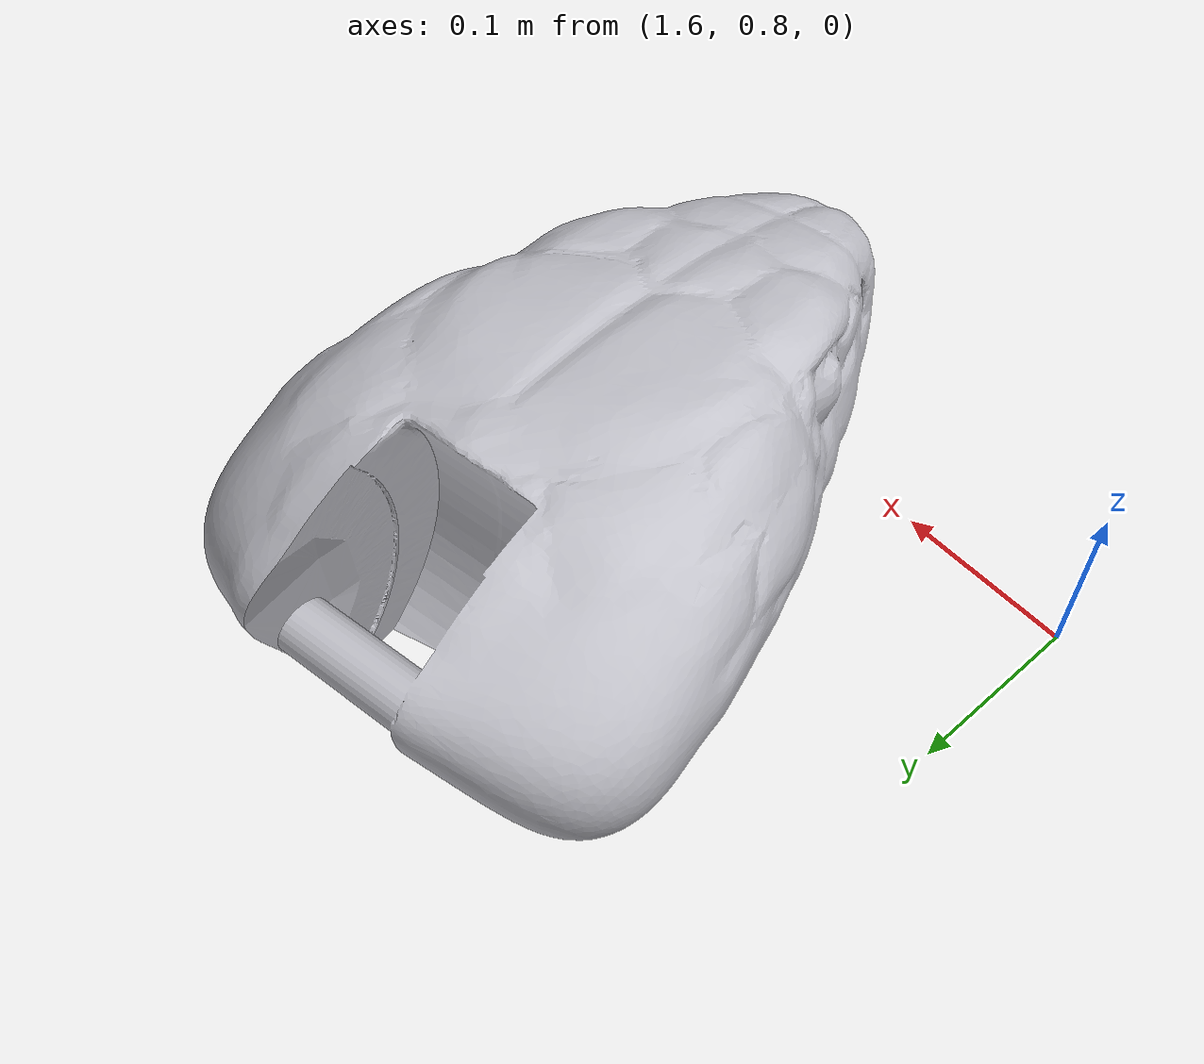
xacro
<?xml version="1.0" ?>
<robot name="snake" xmlns:xacro="http://www.ros.org/wiki/xacro">

<xacro:include filename="$(find snake_description)/urdf/materials.xacro" />
<xacro:include filename="$(find snake_description)/urdf/snake.trans" />
<xacro:include filename="$(find snake_description)/urdf/snake.gazebo" />
<link name="base_link">
  <inertial>
    <origin xyz="1.7661974143715367 0.9640748793406919 0.13379509171078768" rpy="0 0 0"/>
    <mass value="49.294925491945754"/>
    <inertia ixx="0.388918" iyy="0.227654" izz="0.494409" ixy="0.042187" iyz="-0.019872" ixz="0.009252"/>
  </inertial>
  <visual>
    <origin xyz="0 0 0" rpy="0 0 0"/>
    <geometry>
      <mesh filename="package://snake_description/meshes/base_link.stl" scale="0.001 0.001 0.001"/>
    </geometry>
    <material name="silver"/>
  </visual>
  <collision>
    <origin xyz="0 0 0" rpy="0 0 0"/>
    <geometry>
      <mesh filename="package://snake_description/meshes/base_link.stl" scale="0.001 0.001 0.001"/>
    </geometry>
  </collision>
</link>

</robot>

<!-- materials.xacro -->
<robot name="snake" xmlns:xacro="http://www.ros.org/wiki/xacro" >

<material name="snake_green">
  <color rgba="0.2 0.8 0.2 1.000"/>
</material>

<material name="snake_dark">
  <color rgba="0.1 0.4 0.1 1.000"/>
</material>

<material name="snake_pattern">
  <color rgba="0.3 0.9 0.3 1.000"/>
</material>

</robot>

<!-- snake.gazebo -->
<robot name="snake" xmlns:xacro="http://www.ros.org/wiki/xacro" >

<xacro:property name="body_color" value="Gazebo/Silver" />

<gazebo>
  <plugin name="gazebo_ros2_control" filename="libgazebo_ros2_control.so">
    <robot_param>robot_description</robot_param>
  </plugin>
</gazebo>

<gazebo reference="base_link">
  <material>${body_color}</material>
  <mu1>0.8</mu1>
  <mu2>0.8</mu2>
  <selfCollide>true</selfCollide>
  <gravity>true</gravity>
</gazebo>

<!-- Common properties for all snake segments -->
<xacro:macro name="segment_gazebo" params="n">
  <gazebo reference="link${n}">
    <mu1>0.8</mu1>
    <mu2>0.8</mu2>
    <kp>1000000.0</kp>
    <kd>100.0</kd>
    <selfCollide>true</selfCollide>
    <gravity>true</gravity>
    <maxContacts>4</maxContacts>
  </gazebo>
</xacro:macro>

<!-- Apply properties to all segments -->
<xacro:segment_gazebo n="1"/>
<xacro:segment_gazebo n="2"/>
<xacro:segment_gazebo n="3"/>
<xacro:segment_gazebo n="4"/>
<xacro:segment_gazebo n="5"/>
<xacro:segment_gazebo n="6"/>
<xacro:segment_gazebo n="7"/>
<xacro:segment_gazebo n="8"/>
<xacro:segment_gazebo n="9"/>
<xacro:segment_gazebo n="10"/>
<xacro:segment_gazebo n="11"/>
<xacro:segment_gazebo n="12"/>
<xacro:segment_gazebo n="13"/>
<xacro:segment_gazebo n="14"/>
<xacro:segment_gazebo n="15"/>
<xacro:segment_gazebo n="16"/>
<xacro:segment_gazebo n="17"/>
<xacro:segment_gazebo n="18"/>
<xacro:segment_gazebo n="19"/>
<xacro:segment_gazebo n="20"/>
<xacro:segment_gazebo n="21"/>
<xacro:segment_gazebo n="22"/>
<xacro:segment_gazebo n="23"/>
<xacro:segment_gazebo n="24"/>
<xacro:segment_gazebo n="25"/>
<xacro:segment_gazebo n="26"/>
<xacro:segment_gazebo n="27"/>
<xacro:segment_gazebo n="28"/>
<xacro:segment_gazebo n="29"/>
<xacro:segment_gazebo n="30"/>
<xacro:segment_gazebo n="31"/>
<xacro:segment_gazebo n="32"/>
<xacro:segment_gazebo n="33"/>

<gazebo reference="tail_link">
  <mu1>0.8</mu1>
  <mu2>0.8</mu2>
  <kp>1000000.0</kp>
  <kd>100.0</kd>
  <selfCollide>true</selfCollide>
  <gravity>true</gravity>
</gazebo>

</robot>
